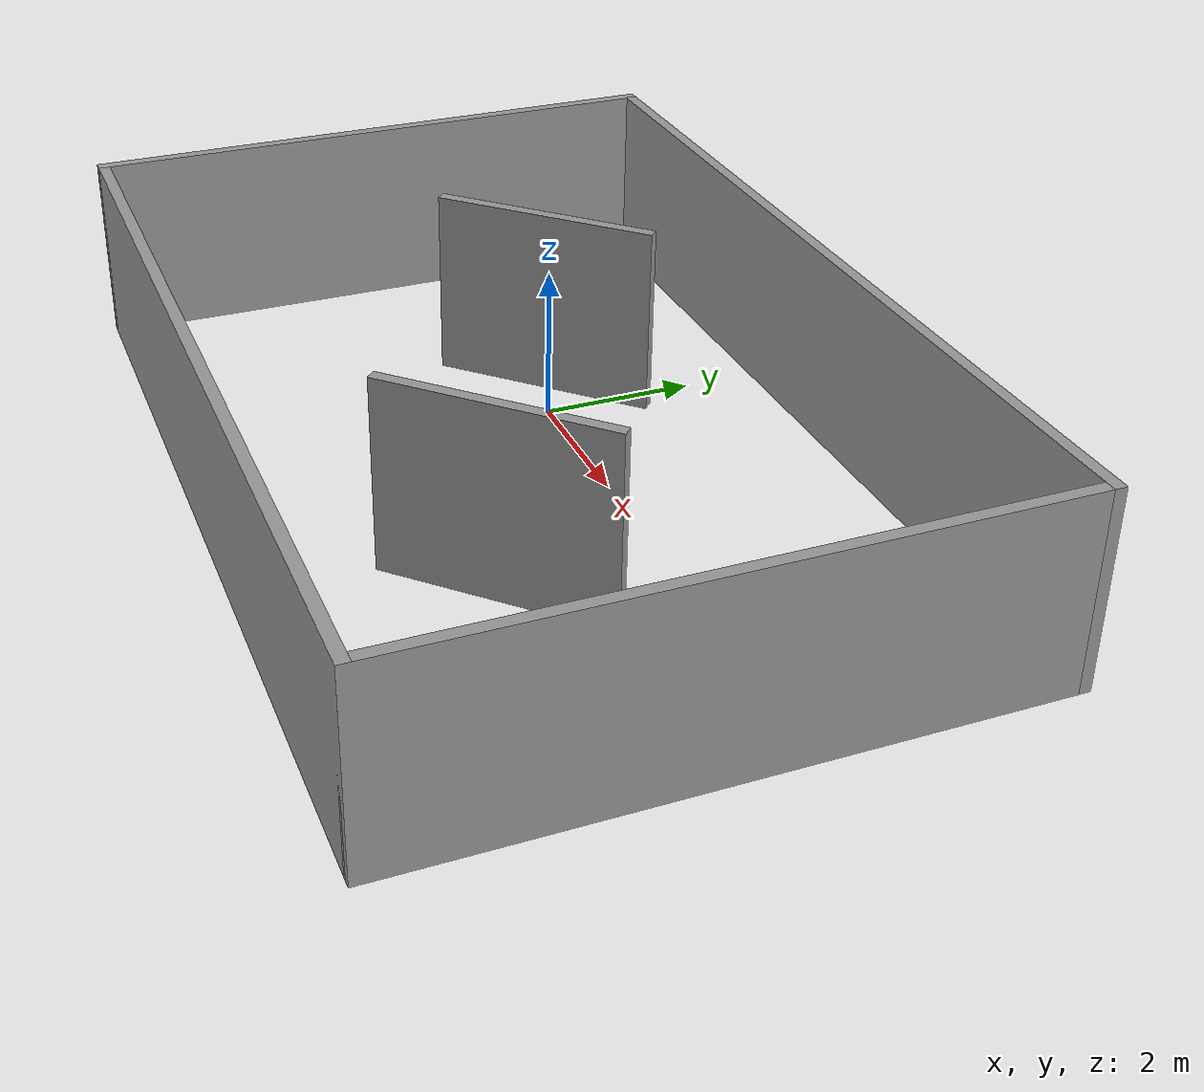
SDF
<?xml version='1.0'?>
<sdf version='1.7'>
  <model name='map'>
    <pose>1.50125 -0.892434 0 0 -0 0</pose>
    <link name='Wall_19'>
      <collision name='Wall_19_Collision'>
        <geometry>
          <box>
            <size>12 0.15 2.5</size>
          </box>
        </geometry>
        <pose>0 0 1.25 0 -0 0</pose>
      </collision>
      <visual name='Wall_19_Visual'>
        <pose>0 0 1.25 0 -0 0</pose>
        <geometry>
          <box>
            <size>12 0.15 2.5</size>
          </box>
        </geometry>
        <material>
          <script>
            <uri>file://media/materials/scripts/gazebo.material</uri>
            <name>Gazebo/Grey</name>
          </script>
          <ambient>1 1 1 1</ambient>
        </material>
        <meta>
          <layer>0</layer>
        </meta>
      </visual>
      <pose>0 -3.925 0 0 -0 0</pose>
    </link>
    <link name='Wall_21'>
      <collision name='Wall_21_Collision'>
        <geometry>
          <box>
            <size>8 0.15 2.5</size>
          </box>
        </geometry>
        <pose>0 0 1.25 0 -0 0</pose>
      </collision>
      <visual name='Wall_21_Visual'>
        <pose>0 0 1.25 0 -0 0</pose>
        <geometry>
          <box>
            <size>8 0.15 2.5</size>
          </box>
        </geometry>
        <material>
          <script>
            <uri>file://media/materials/scripts/gazebo.material</uri>
            <name>Gazebo/Grey</name>
          </script>
          <ambient>1 1 1 1</ambient>
        </material>
        <meta>
          <layer>0</layer>
        </meta>
      </visual>
      <pose>5.925 -0 0 0 -0 1.5708</pose>
    </link>
    <link name='Wall_22'>
      <collision name='Wall_22_Collision'>
        <geometry>
          <box>
            <size>12 0.15 2.5</size>
          </box>
        </geometry>
        <pose>0 0 1.25 0 -0 0</pose>
      </collision>
      <visual name='Wall_22_Visual'>
        <pose>0 0 1.25 0 -0 0</pose>
        <geometry>
          <box>
            <size>12 0.15 2.5</size>
          </box>
        </geometry>
        <material>
          <script>
            <uri>file://media/materials/scripts/gazebo.material</uri>
            <name>Gazebo/Grey</name>
          </script>
          <ambient>1 1 1 1</ambient>
        </material>
        <meta>
          <layer>0</layer>
        </meta>
      </visual>
      <pose>0 3.925 0 0 -0 3.14159</pose>
    </link>
    <link name='Wall_23'>
      <collision name='Wall_23_Collision'>
        <geometry>
          <box>
            <size>8 0.15 2.5</size>
          </box>
        </geometry>
        <pose>0 0 1.25 0 -0 0</pose>
      </collision>
      <visual name='Wall_23_Visual'>
        <pose>0 0 1.25 0 -0 0</pose>
        <geometry>
          <box>
            <size>8 0.15 2.5</size>
          </box>
        </geometry>
        <material>
          <script>
            <uri>file://media/materials/scripts/gazebo.material</uri>
            <name>Gazebo/Grey</name>
          </script>
          <ambient>1 1 1 1</ambient>
        </material>
        <meta>
          <layer>0</layer>
        </meta>
      </visual>
      <pose>-5.925 -0 0 0 -0 -1.5708</pose>
    </link>
    <link name='Wall_28'>
      <collision name='Wall_28_Collision'>
        <geometry>
          <box>
            <size>3 0.15 2.5</size>
          </box>
        </geometry>
        <pose>0 0 1.25 0 -0 0</pose>
      </collision>
      <visual name='Wall_28_Visual'>
        <pose>0 0 1.25 0 -0 0</pose>
        <geometry>
          <box>
            <size>3 0.15 2.5</size>
          </box>
        </geometry>
        <material>
          <script>
            <uri>file://media/materials/scripts/gazebo.material</uri>
            <name>Gazebo/Grey</name>
          </script>
          <ambient>1 1 1 1</ambient>
        </material>
        <meta>
          <layer>0</layer>
        </meta>
      </visual>
      <pose>-2.23735 1.12125 0 0 -0 0.785398</pose>
    </link>
    <link name='Wall_33'>
      <collision name='Wall_33_Collision'>
        <geometry>
          <box>
            <size>3 0.15 2.5</size>
          </box>
        </geometry>
        <pose>0 0 1.25 0 -0 0</pose>
      </collision>
      <visual name='Wall_33_Visual'>
        <pose>0 0 1.25 0 -0 0</pose>
        <geometry>
          <box>
            <size>3 0.15 2.5</size>
          </box>
        </geometry>
        <material>
          <script>
            <uri>file://media/materials/scripts/gazebo.material</uri>
            <name>Gazebo/Grey</name>
          </script>
          <ambient>1 1 1 1</ambient>
        </material>
        <meta>
          <layer>0</layer>
        </meta>
      </visual>
      <pose>2.21218 -1.17669 0 0 -0 -2.35619</pose>
    </link>
    <static>1</static>
  </model>
</sdf>
